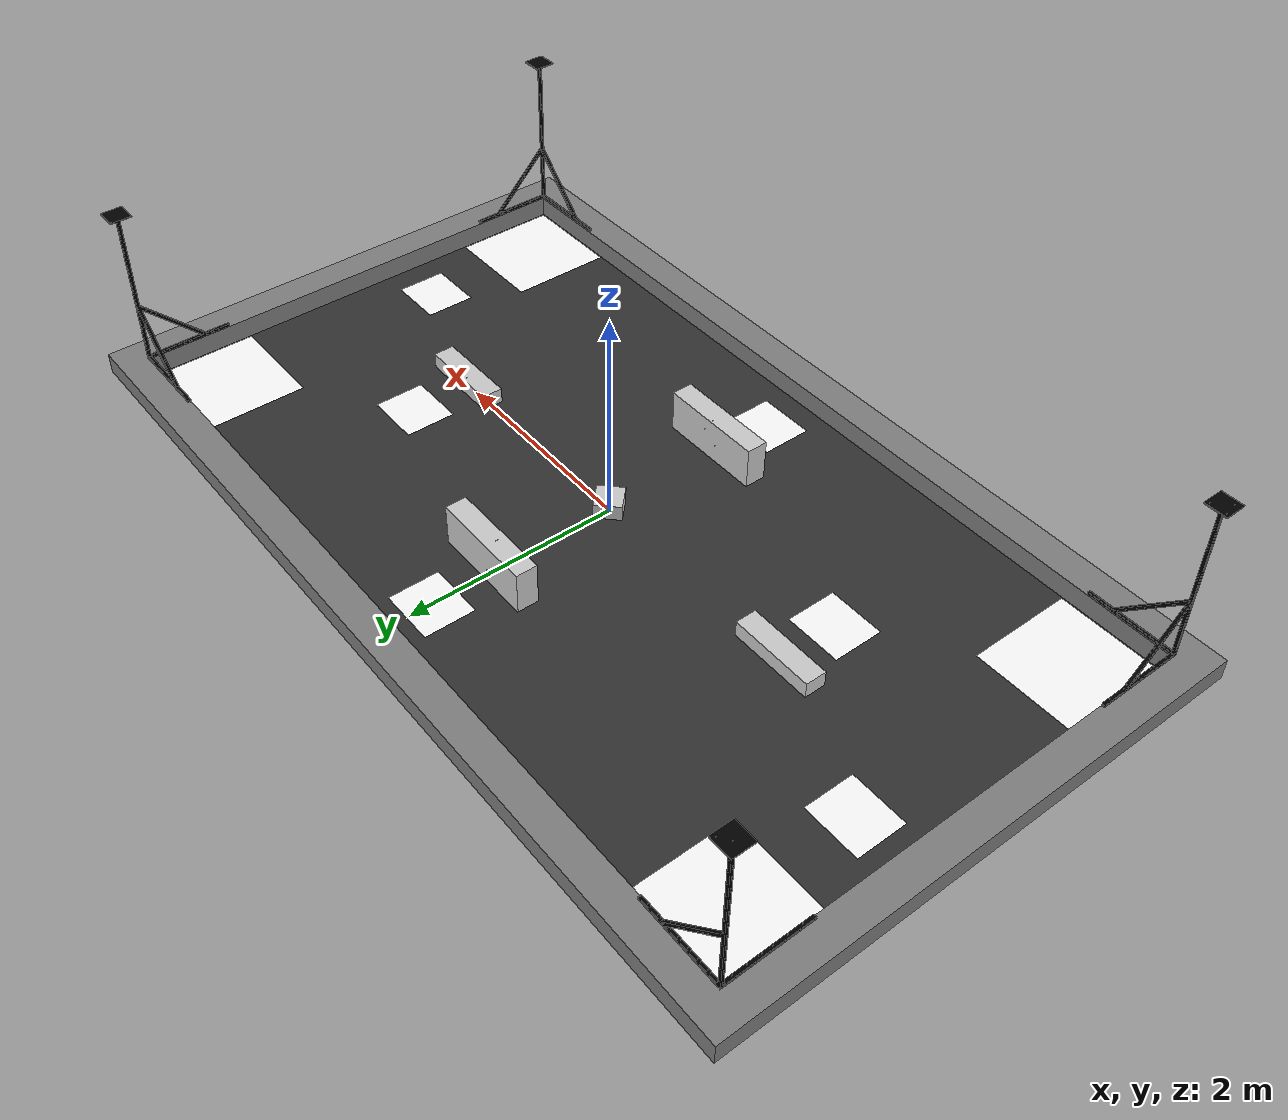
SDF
<?xml version="1.0" ?>
<!-- |    This document was autogenerated by xmacro from model.sdf.xmacro              | -->
<!-- |    EDITING THIS FILE BY HAND IS NOT RECOMMENDED                                 | -->
<sdf version="1.7">
	<model name="rmua22_battlefield">
		<pose>0 0 0.01 0 0 0</pose>
		<static>1</static>
		<link name="battlefield">
			<collision name="ground_collision">
				<geometry>
					<plane>
						<normal>0 0 1</normal>
						<size>8.5 5</size>
					</plane>
				</geometry>
			</collision>
			<visual name="ground_visual">
				<geometry>
					<plane>
						<normal>0 0 1</normal>
						<size>8.5 5</size>
					</plane>
				</geometry>
				<material>
					<ambient>0.2 0.2 0.2 1</ambient>
					<diffuse>0.2 0.2 0.2 1</diffuse>
				</material>
			</visual>
			<collision name="wall_collision">
				<geometry>
					<mesh>
						<uri>model://rmua22_battlefield/meshes/wall.STL</uri>
					</mesh>
				</geometry>
			</collision>
			<visual name="wall_visual">
				<geometry>
					<mesh>
						<uri>model://rmua22_battlefield/meshes/wall.STL</uri>
					</mesh>
				</geometry>
				<material>
					<ambient>0.5 0.5 0.5 1</ambient>
					<diffuse>0.5 0.5 0.5 1</diffuse>
				</material>
			</visual>
			<collision name="obstacle_collision">
				<geometry>
					<mesh>
						<uri>model://rmua22_battlefield/meshes/obstacle_boxes.STL</uri>
					</mesh>
				</geometry>
			</collision>
			<visual name="obstacle_visual">
				<geometry>
					<mesh>
						<uri>model://rmua22_battlefield/meshes/obstacle_boxes.STL</uri>
					</mesh>
				</geometry>
				<material>
					<ambient>0.8 0.8 0.8 1</ambient>
					<diffuse>0.8 0.8 0.8 1</diffuse>
				</material>
			</visual>
			<collision name="outpost_collision">
				<geometry>
					<mesh>
						<uri>model://rmua22_battlefield/meshes/outpost.STL</uri>
					</mesh>
				</geometry>
			</collision>
			<visual name="outpost_visual">
				<geometry>
					<mesh>
						<uri>model://rmua22_battlefield/meshes/outpost.STL</uri>
					</mesh>
				</geometry>
				<material>
					<ambient>0 0 0 1</ambient>
					<diffuse>0 0 0 1</diffuse>
				</material>
			</visual>
			<!--starting zone visual-->
			<visual name="red1_starting_zone_visual">
				<pose>3.54 1.74 0.001 0 0 1.57</pose>
				<geometry>
					<plane>
						<normal>0 0 1</normal>
						<size>1.0 1.0</size>
					</plane>
				</geometry>
				<material>
					<diffuse>1.0 1.0 1.0</diffuse>
					<pbr>
						<metal>
							<albedo_map>model://rmua22_battlefield/materials/textures/starting_zone_sticker_red.png</albedo_map>
						</metal>
					</pbr>
				</material>
			</visual>
			<visual name="red2_starting_zone_visual">
				<pose>3.54 -1.74 0.001 0 0 1.57</pose>
				<geometry>
					<plane>
						<normal>0 0 1</normal>
						<size>1.0 1.0</size>
					</plane>
				</geometry>
				<material>
					<diffuse>1.0 1.0 1.0</diffuse>
					<pbr>
						<metal>
							<albedo_map>model://rmua22_battlefield/materials/textures/starting_zone_sticker_red.png</albedo_map>
						</metal>
					</pbr>
				</material>
			</visual>
			<visual name="blue1_starting_zone_visual">
				<pose>-3.54 -1.74 0.001 0 0 -1.57</pose>
				<geometry>
					<plane>
						<normal>0 0 1</normal>
						<size>1.0 1.0</size>
					</plane>
				</geometry>
				<material>
					<diffuse>1.0 1.0 1.0</diffuse>
					<pbr>
						<metal>
							<albedo_map>model://rmua22_battlefield/materials/textures/starting_zone_sticker_blue.png</albedo_map>
						</metal>
					</pbr>
				</material>
			</visual>
			<visual name="blue2_starting_zone_visual">
				<pose>-3.54 1.74 0.001 0 0 -1.57</pose>
				<geometry>
					<plane>
						<normal>0 0 1</normal>
						<size>1.0 1.0</size>
					</plane>
				</geometry>
				<material>
					<diffuse>1.0 1.0 1.0</diffuse>
					<pbr>
						<metal>
							<albedo_map>model://rmua22_battlefield/materials/textures/starting_zone_sticker_blue.png</albedo_map>
						</metal>
					</pbr>
				</material>
			</visual>
			<!--buff zone visual-->
			<visual name="F6_buff_zone_visual">
				<pose>-3.54 0.55 0.001 0 0 0</pose>
				<geometry>
					<plane>
						<normal>0 0 1</normal>
						<size>0.54 0.48</size>
					</plane>
				</geometry>
				<material>
					<diffuse>1.0 1.0 1.0</diffuse>
					<pbr>
						<metal>
							<albedo_map>model://rmua22_battlefield/materials/textures/buffer_zone_sticker.png</albedo_map>
						</metal>
					</pbr>
				</material>
			</visual>
			<visual name="F5_buff_zone_visual">
				<pose>-2.14 -0.59 0.001 0 0 0</pose>
				<geometry>
					<plane>
						<normal>0 0 1</normal>
						<size>0.54 0.48</size>
					</plane>
				</geometry>
				<material>
					<diffuse>1.0 1.0 1.0</diffuse>
					<pbr>
						<metal>
							<albedo_map>model://rmua22_battlefield/materials/textures/buffer_zone_sticker.png</albedo_map>
						</metal>
					</pbr>
				</material>
			</visual>
			<visual name="F4_buff_zone_visual">
				<pose>0 1.795 0.001 0 0 0</pose>
				<geometry>
					<plane>
						<normal>0 0 1</normal>
						<size>0.54 0.48</size>
					</plane>
				</geometry>
				<material>
					<diffuse>1.0 1.0 1.0</diffuse>
					<pbr>
						<metal>
							<albedo_map>model://rmua22_battlefield/materials/textures/buffer_zone_sticker.png</albedo_map>
						</metal>
					</pbr>
				</material>
			</visual>
			<visual name="F3_buff_zone_visual">
				<pose>0 -1.795 0.001 0 0 0</pose>
				<geometry>
					<plane>
						<normal>0 0 1</normal>
						<size>0.54 0.48</size>
					</plane>
				</geometry>
				<material>
					<diffuse>1.0 1.0 1.0</diffuse>
					<pbr>
						<metal>
							<albedo_map>model://rmua22_battlefield/materials/textures/buffer_zone_sticker.png</albedo_map>
						</metal>
					</pbr>
				</material>
			</visual>
			<visual name="F2_buff_zone_visual">
				<pose>2.14 0.59 0.001 0 0 0</pose>
				<geometry>
					<plane>
						<normal>0 0 1</normal>
						<size>0.54 0.48</size>
					</plane>
				</geometry>
				<material>
					<diffuse>1.0 1.0 1.0</diffuse>
					<pbr>
						<metal>
							<albedo_map>model://rmua22_battlefield/materials/textures/buffer_zone_sticker.png</albedo_map>
						</metal>
					</pbr>
				</material>
			</visual>
			<visual name="F1_buff_zone_visual">
				<pose>3.54 -0.55 0.001 0 0 0</pose>
				<geometry>
					<plane>
						<normal>0 0 1</normal>
						<size>0.54 0.48</size>
					</plane>
				</geometry>
				<material>
					<diffuse>1.0 1.0 1.0</diffuse>
					<pbr>
						<metal>
							<albedo_map>model://rmua22_battlefield/materials/textures/buffer_zone_sticker.png</albedo_map>
						</metal>
					</pbr>
				</material>
			</visual>
		</link>
	</model>
</sdf>
